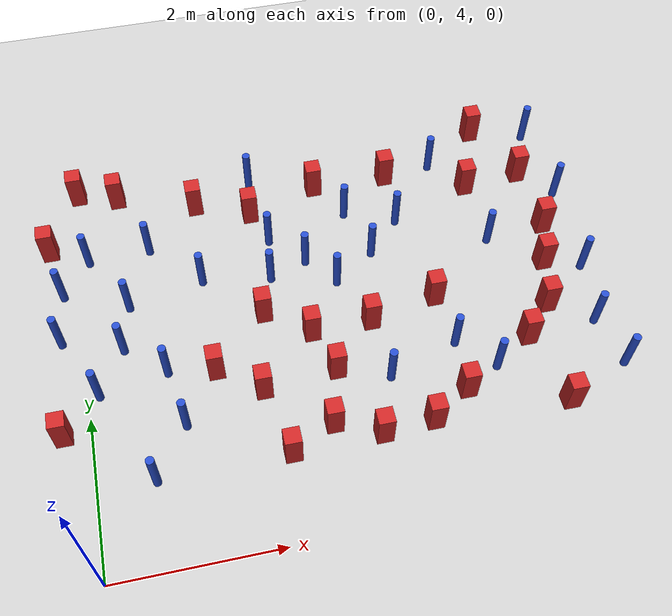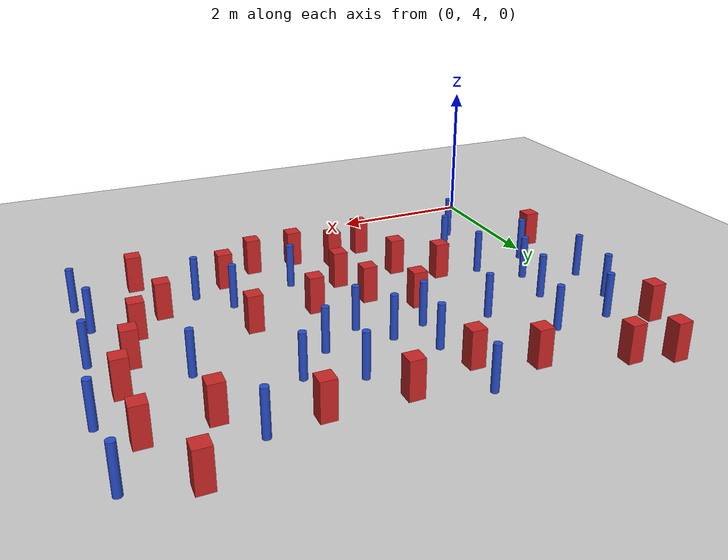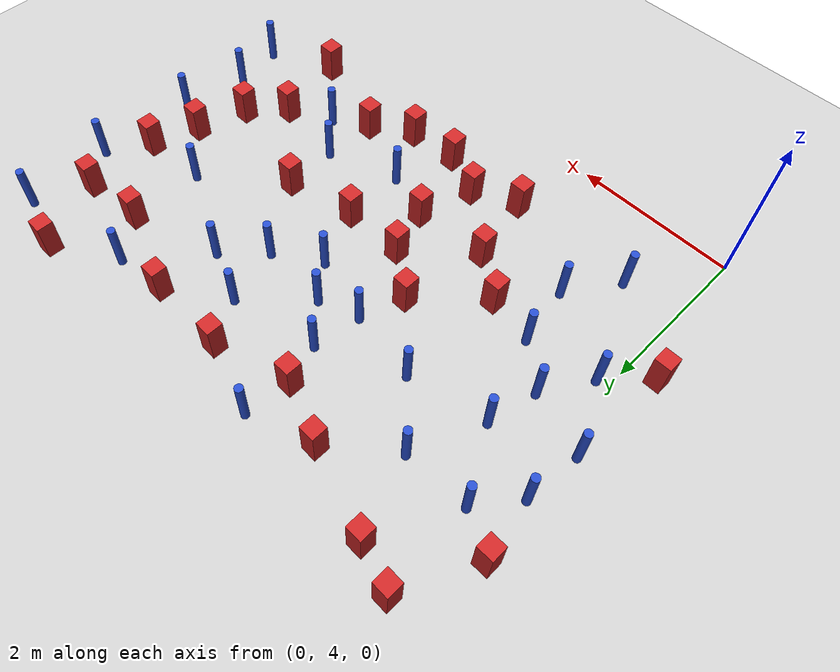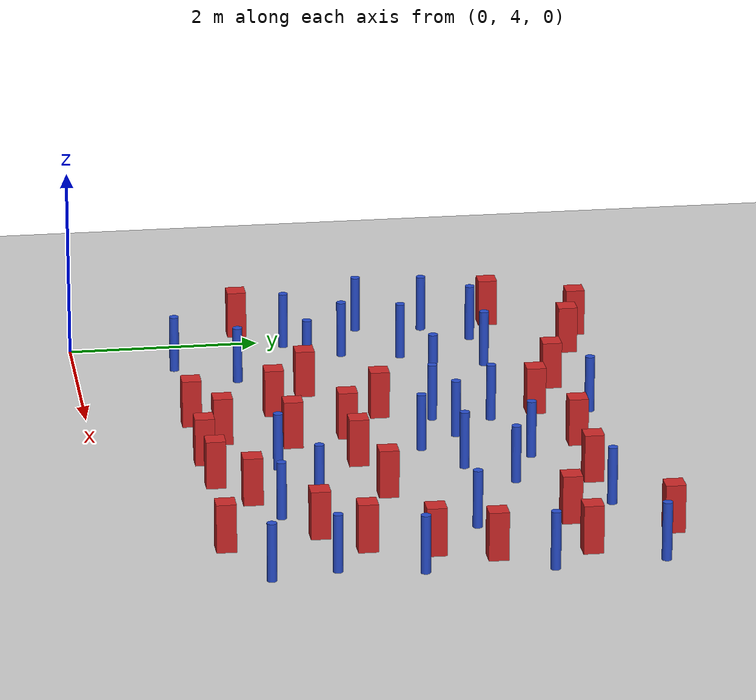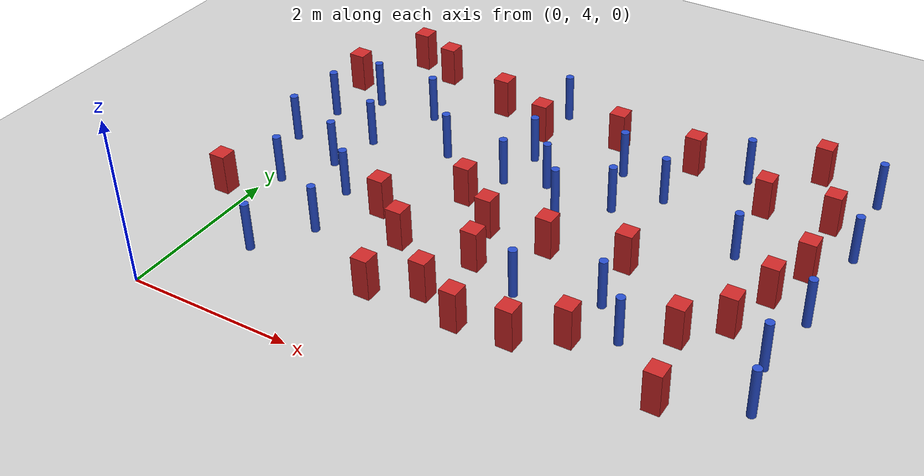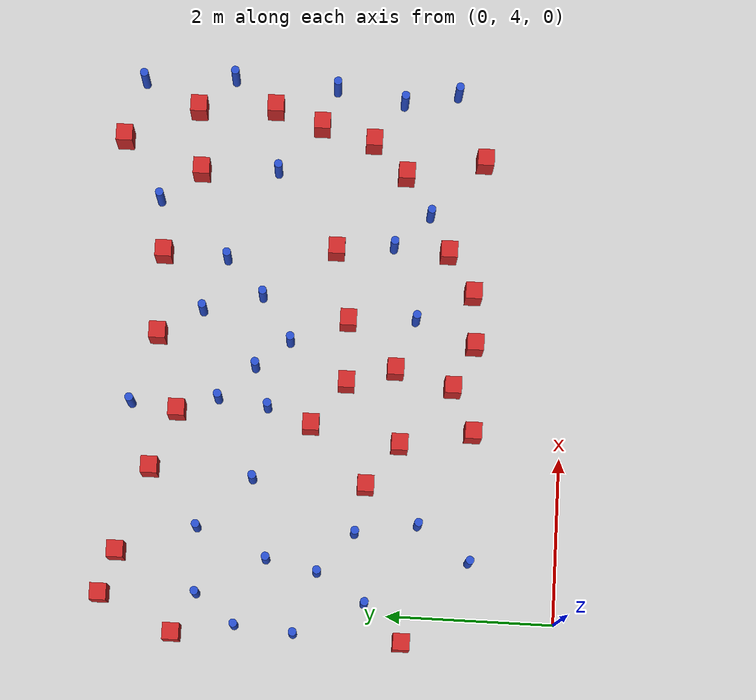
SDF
<sdf version="1.6">
 <world name="default">
  <model name="ground_plane">
   <static>1</static>
   <link name="link">
    <collision name="collision">
     <geometry><plane><normal>0 0 1</normal><size>100 100</size></plane></geometry>
     <surface><friction><ode><mu>100</mu><mu2>50</mu2></ode></friction></surface>
    </collision>
    <visual name="visual">
     <cast_shadows>0</cast_shadows>
     <geometry><plane><normal>0 0 1</normal><size>100 100</size></plane></geometry>
     <material>
      <ambient>1.0 1.0 1.0 1.0</ambient>
      <diffuse>0.8 0.8 0.8 1.0</diffuse>
      <specular>0.01 0.01 0.01 1.000000</specular>
     </material>
    </visual>
   </link>
  </model>
  <model name="square_post_obstacle3">
   <static>true</static>
   <pose>3.93820406455 5.13274334286 8.22691968438e-08 7.2212513382e-06 -7.54495500217e-07 2.29674213826e-05</pose>
   <link name="link">
    <pose>0 0 0.25 0 -0 0</pose>
    <inertial>
     <mass>100</mass>
     <inertia>
      <ixx>0.166667</ixx>
      <ixy>0</ixy>
      <ixz>0</ixz>
      <iyy>0.166667</iyy>
      <iyz>0</iyz>
      <izz>0.166667</izz>
     </inertia>
    </inertial>
    <collision name="collision"><geometry><box><size>.2 .2 .5</size></box></geometry></collision>
    <visual name="visual">
     <geometry><box><size>.2 .2 .5</size></box></geometry>
     <material>
      <script><name>Gazebo/Red</name><uri>file://media/materials/scripts/gazebo.material</uri></script>
     </material>
    </visual>
   </link>
  </model>
  <model name="square_post_obstacle6">
   <static>true</static>
   <pose>0.612230005593 9.25797296877 8.22691968438e-08 7.22125133819e-06 -7.54495500217e-07 2.29674213826e-05</pose>
   <link name="link">
    <pose>0 0 0.25 0 -0 0</pose>
    <inertial>
     <mass>100</mass>
     <inertia>
      <ixx>0.166667</ixx>
      <ixy>0</ixy>
      <ixz>0</ixz>
      <iyy>0.166667</iyy>
      <iyz>0</iyz>
      <izz>0.166667</izz>
     </inertia>
    </inertial>
    <collision name="collision"><geometry><box><size>.2 .2 .5</size></box></geometry></collision>
    <visual name="visual">
     <geometry><box><size>.2 .2 .5</size></box></geometry>
     <material>
      <script><name>Gazebo/Red</name><uri>file://media/materials/scripts/gazebo.material</uri></script>
     </material>
    </visual>
   </link>
  </model>
  <model name="square_post_obstacle8">
   <static>true</static>
   <pose>2.05817050153 5.94106591254 8.22691968438e-08 7.22125133819e-06 -7.54495500217e-07 2.29674213826e-05</pose>
   <link name="link">
    <pose>0 0 0.25 0 -0 0</pose>
    <inertial>
     <mass>100</mass>
     <inertia>
      <ixx>0.166667</ixx>
      <ixy>0</ixy>
      <ixz>0</ixz>
      <iyy>0.166667</iyy>
      <iyz>0</iyz>
      <izz>0.166667</izz>
     </inertia>
    </inertial>
    <collision name="collision"><geometry><box><size>.2 .2 .5</size></box></geometry></collision>
    <visual name="visual">
     <geometry><box><size>.2 .2 .5</size></box></geometry>
     <material>
      <script><name>Gazebo/Red</name><uri>file://media/materials/scripts/gazebo.material</uri></script>
     </material>
    </visual>
   </link>
  </model>
  <model name="square_post_obstacle12">
   <static>true</static>
   <pose>6.08532268999 8.58405498495 8.22691968438e-08 7.22125133819e-06 -7.54495500217e-07 2.29674213826e-05</pose>
   <link name="link">
    <pose>0 0 0.25 0 -0 0</pose>
    <inertial>
     <mass>100</mass>
     <inertia>
      <ixx>0.166667</ixx>
      <ixy>0</ixy>
      <ixz>0</ixz>
      <iyy>0.166667</iyy>
      <iyz>0</iyz>
      <izz>0.166667</izz>
     </inertia>
    </inertial>
    <collision name="collision"><geometry><box><size>.2 .2 .5</size></box></geometry></collision>
    <visual name="visual">
     <geometry><box><size>.2 .2 .5</size></box></geometry>
     <material>
      <script><name>Gazebo/Red</name><uri>file://media/materials/scripts/gazebo.material</uri></script>
     </material>
    </visual>
   </link>
  </model>
  <model name="square_post_obstacle13">
   <static>true</static>
   <pose>2.34242101366 8.63387449862 8.22691968438e-08 7.22125133819e-06 -7.54495500217e-07 2.29674213826e-05</pose>
   <link name="link">
    <pose>0 0 0.25 0 -0 0</pose>
    <inertial>
     <mass>100</mass>
     <inertia>
      <ixx>0.166667</ixx>
      <ixy>0</ixy>
      <ixz>0</ixz>
      <iyy>0.166667</iyy>
      <iyz>0</iyz>
      <izz>0.166667</izz>
     </inertia>
    </inertial>
    <collision name="collision"><geometry><box><size>.2 .2 .5</size></box></geometry></collision>
    <visual name="visual">
     <geometry><box><size>.2 .2 .5</size></box></geometry>
     <material>
      <script><name>Gazebo/Red</name><uri>file://media/materials/scripts/gazebo.material</uri></script>
     </material>
    </visual>
   </link>
  </model>
  <model name="square_post_obstacle17">
   <static>true</static>
   <pose>4.26680201008 8.90688729605 8.22691968438e-08 7.22125133819e-06 -7.54495500217e-07 2.29674213826e-05</pose>
   <link name="link">
    <pose>0 0 0.25 0 -0 0</pose>
    <inertial>
     <mass>100</mass>
     <inertia>
      <ixx>0.166667</ixx>
      <ixy>0</ixy>
      <ixz>0</ixz>
      <iyy>0.166667</iyy>
      <iyz>0</iyz>
      <izz>0.166667</izz>
     </inertia>
    </inertial>
    <collision name="collision"><geometry><box><size>.2 .2 .5</size></box></geometry></collision>
    <visual name="visual">
     <geometry><box><size>.2 .2 .5</size></box></geometry>
     <material>
      <script><name>Gazebo/Red</name><uri>file://media/materials/scripts/gazebo.material</uri></script>
     </material>
    </visual>
   </link>
  </model>
  <model name="pole_obstacle13">
   <static>true</static>
   <pose>4.47920381448 6.11489741807 2.88873142074e-08 -9.90536690842e-09 4.60219948965e-07 -1.20965994976e-07</pose>
   <link name="link">
    <pose>0 0 0.3 0 -0 0</pose>
    <inertial>
     <mass>1</mass>
     <inertia><ixx>0.145833</ixx><ixy>0</ixy><ixz>0</ixz><iyy>0.145833</iyy><iyz>0</iyz><izz>0.125</izz></inertia>
    </inertial>
    <collision name="collision">
     <geometry><cylinder><radius>0.05</radius><length>.6</length></cylinder></geometry>
    </collision>
    <visual name="visual">
     <geometry><cylinder><radius>0.05</radius><length>.6</length></cylinder></geometry>
     <material>
      <script><name>Gazebo/Blue</name><uri>file://media/materials/scripts/gazebo.material</uri></script>
     </material>
    </visual>
   </link>
  </model>
  <model name="pole_obstacle18">
   <static>true</static>
   <pose>1.56160406141 7.6801341566 2.88873142074e-08 -9.90536689852e-09 4.60219948989e-07 -1.2096599496e-07</pose>
   <link name="link">
    <pose>0 0 0.3 0 -0 0</pose>
    <inertial>
     <mass>1</mass>
     <inertia><ixx>0.145833</ixx><ixy>0</ixy><ixz>0</ixz><iyy>0.145833</iyy><iyz>0</iyz><izz>0.125</izz></inertia>
    </inertial>
    <collision name="collision">
     <geometry><cylinder><radius>0.05</radius><length>.6</length></cylinder></geometry>
    </collision>
    <visual name="visual">
     <geometry><cylinder><radius>0.05</radius><length>.6</length></cylinder></geometry>
     <material>
      <script><name>Gazebo/Blue</name><uri>file://media/materials/scripts/gazebo.material</uri></script>
     </material>
    </visual>
   </link>
  </model>
  <model name="square_post_obstacle34">
   <static>true</static>
   <pose>4.43094901096 5.45059155126 8.22691968438e-08 7.2212513382e-06 -7.54495500217e-07 2.29674213826e-05</pose>
   <link name="link">
    <pose>0 0 0.25 0 -0 0</pose>
    <inertial>
     <mass>100</mass>
     <inertia>
      <ixx>0.166667</ixx>
      <ixy>0</ixy>
      <ixz>0</ixz>
      <iyy>0.166667</iyy>
      <iyz>0</iyz>
      <izz>0.166667</izz>
     </inertia>
    </inertial>
    <collision name="collision"><geometry><box><size>.2 .2 .5</size></box></geometry></collision>
    <visual name="visual">
     <geometry><box><size>.2 .2 .5</size></box></geometry>
     <material>
      <script><name>Gazebo/Red</name><uri>file://media/materials/scripts/gazebo.material</uri></script>
     </material>
    </visual>
   </link>
  </model>
  <model name="pole_obstacle34">
   <static>true</static>
   <pose>0.474827647857 6.85268794192 2.88873142074e-08 -9.90536689616e-09 4.60219948994e-07 -1.20965994955e-07</pose>
   <link name="link">
    <pose>0 0 0.3 0 -0 0</pose>
    <inertial>
     <mass>1</mass>
     <inertia><ixx>0.145833</ixx><ixy>0</ixy><ixz>0</ixz><iyy>0.145833</iyy><iyz>0</iyz><izz>0.125</izz></inertia>
    </inertial>
    <collision name="collision">
     <geometry><cylinder><radius>0.05</radius><length>.6</length></cylinder></geometry>
    </collision>
    <visual name="visual">
     <geometry><cylinder><radius>0.05</radius><length>.6</length></cylinder></geometry>
     <material>
      <script><name>Gazebo/Blue</name><uri>file://media/materials/scripts/gazebo.material</uri></script>
     </material>
    </visual>
   </link>
  </model>
  <model name="square_post_obstacle37">
   <static>true</static>
   <pose>5.94651616325 7.06699142057 8.22691968438e-08 7.2212513382e-06 -7.54495500217e-07 2.29674213826e-05</pose>
   <link name="link">
    <pose>0 0 0.25 0 -0 0</pose>
    <inertial>
     <mass>100</mass>
     <inertia>
      <ixx>0.166667</ixx>
      <ixy>0</ixy>
      <ixz>0</ixz>
      <iyy>0.166667</iyy>
      <iyz>0</iyz>
      <izz>0.166667</izz>
     </inertia>
    </inertial>
    <collision name="collision"><geometry><box><size>.2 .2 .5</size></box></geometry></collision>
    <visual name="visual">
     <geometry><box><size>.2 .2 .5</size></box></geometry>
     <material>
      <script><name>Gazebo/Red</name><uri>file://media/materials/scripts/gazebo.material</uri></script>
     </material>
    </visual>
   </link>
  </model>
  <model name="pole_obstacle41">
   <static>true</static>
   <pose>0.679416397526 5.04934636724 2.88873142074e-08 -9.90536689661e-09 4.60219948993e-07 -1.20965994957e-07</pose>
   <link name="link">
    <pose>0 0 0.3 0 -0 0</pose>
    <inertial>
     <mass>1</mass>
     <inertia><ixx>0.145833</ixx><ixy>0</ixy><ixz>0</ixz><iyy>0.145833</iyy><iyz>0</iyz><izz>0.125</izz></inertia>
    </inertial>
    <collision name="collision">
     <geometry><cylinder><radius>0.05</radius><length>.6</length></cylinder></geometry>
    </collision>
    <visual name="visual">
     <geometry><cylinder><radius>0.05</radius><length>.6</length></cylinder></geometry>
     <material>
      <script><name>Gazebo/Blue</name><uri>file://media/materials/scripts/gazebo.material</uri></script>
     </material>
    </visual>
   </link>
  </model>
  <model name="pole_obstacle44">
   <static>true</static>
   <pose>3.58665545025 8.39336973576 2.88873142074e-08 -9.90536692318e-09 4.6021994893e-07 -1.20965994988e-07</pose>
   <link name="link">
    <pose>0 0 0.3 0 -0 0</pose>
    <inertial>
     <mass>1</mass>
     <inertia><ixx>0.145833</ixx><ixy>0</ixy><ixz>0</ixz><iyy>0.145833</iyy><iyz>0</iyz><izz>0.125</izz></inertia>
    </inertial>
    <collision name="collision">
     <geometry><cylinder><radius>0.05</radius><length>.6</length></cylinder></geometry>
    </collision>
    <visual name="visual">
     <geometry><cylinder><radius>0.05</radius><length>.6</length></cylinder></geometry>
     <material>
      <script><name>Gazebo/Blue</name><uri>file://media/materials/scripts/gazebo.material</uri></script>
     </material>
    </visual>
   </link>
  </model>
  <model name="square_post_obstacle47">
   <static>true</static>
   <pose>1.54200591391 6.32319415992 8.22691968438e-08 7.2212513382e-06 -7.54495500217e-07 2.29674213826e-05</pose>
   <link name="link">
    <pose>0 0 0.25 0 -0 0</pose>
    <inertial>
     <mass>100</mass>
     <inertia>
      <ixx>0.166667</ixx>
      <ixy>0</ixy>
      <ixz>0</ixz>
      <iyy>0.166667</iyy>
      <iyz>0</iyz>
      <izz>0.166667</izz>
     </inertia>
    </inertial>
    <collision name="collision"><geometry><box><size>.2 .2 .5</size></box></geometry></collision>
    <visual name="visual">
     <geometry><box><size>.2 .2 .5</size></box></geometry>
     <material>
      <script><name>Gazebo/Red</name><uri>file://media/materials/scripts/gazebo.material</uri></script>
     </material>
    </visual>
   </link>
  </model>
  <model name="pole_obstacle53">
   <static>true</static>
   <pose>0.946017847434 8.31650442014 2.88873142074e-08 -9.90536690779e-09 4.60219948967e-07 -1.20965994975e-07</pose>
   <link name="link">
    <pose>0 0 0.3 0 -0 0</pose>
    <inertial>
     <mass>1</mass>
     <inertia><ixx>0.145833</ixx><ixy>0</ixy><ixz>0</ixz><iyy>0.145833</iyy><iyz>0</iyz><izz>0.125</izz></inertia>
    </inertial>
    <collision name="collision">
     <geometry><cylinder><radius>0.05</radius><length>.6</length></cylinder></geometry>
    </collision>
    <visual name="visual">
     <geometry><cylinder><radius>0.05</radius><length>.6</length></cylinder></geometry>
     <material>
      <script><name>Gazebo/Blue</name><uri>file://media/materials/scripts/gazebo.material</uri></script>
     </material>
    </visual>
   </link>
  </model>
  <model name="pole_obstacle62">
   <static>true</static>
   <pose>3.58914562045 5.80839317502 2.88873142074e-08 -9.90536689859e-09 4.60219948989e-07 -1.20965994961e-07</pose>
   <link name="link">
    <pose>0 0 0.3 0 -0 0</pose>
    <inertial>
     <mass>1</mass>
     <inertia><ixx>0.145833</ixx><ixy>0</ixy><ixz>0</ixz><iyy>0.145833</iyy><iyz>0</iyz><izz>0.125</izz></inertia>
    </inertial>
    <collision name="collision">
     <geometry><cylinder><radius>0.05</radius><length>.6</length></cylinder></geometry>
    </collision>
    <visual name="visual">
     <geometry><cylinder><radius>0.05</radius><length>.6</length></cylinder></geometry>
     <material>
      <script><name>Gazebo/Blue</name><uri>file://media/materials/scripts/gazebo.material</uri></script>
     </material>
    </visual>
   </link>
  </model>
  <model name="pole_obstacle65">
   <static>true</static>
   <pose>5.35327098498 7.57204691317 2.88873142074e-08 -9.90536690842e-09 4.60219948965e-07 -1.20965994976e-07</pose>
   <link name="link">
    <pose>0 0 0.3 0 -0 0</pose>
    <inertial>
     <mass>1</mass>
     <inertia><ixx>0.145833</ixx><ixy>0</ixy><ixz>0</ixz><iyy>0.145833</iyy><iyz>0</iyz><izz>0.125</izz></inertia>
    </inertial>
    <collision name="collision">
     <geometry><cylinder><radius>0.05</radius><length>.6</length></cylinder></geometry>
    </collision>
    <visual name="visual">
     <geometry><cylinder><radius>0.05</radius><length>.6</length></cylinder></geometry>
     <material>
      <script><name>Gazebo/Blue</name><uri>file://media/materials/scripts/gazebo.material</uri></script>
     </material>
    </visual>
   </link>
  </model>
  <model name="square_post_obstacle75">
   <static>true</static>
   <pose>2.96642379418 6.03045998786 8.22691968438e-08 7.2212513382e-06 -7.54495500217e-07 2.29674213826e-05</pose>
   <link name="link">
    <pose>0 0 0.25 0 -0 0</pose>
    <inertial>
     <mass>100</mass>
     <inertia>
      <ixx>0.166667</ixx>
      <ixy>0</ixy>
      <ixz>0</ixz>
      <iyy>0.166667</iyy>
      <iyz>0</iyz>
      <izz>0.166667</izz>
     </inertia>
    </inertial>
    <collision name="collision"><geometry><box><size>.2 .2 .5</size></box></geometry></collision>
    <visual name="visual">
     <geometry><box><size>.2 .2 .5</size></box></geometry>
     <material>
      <script><name>Gazebo/Red</name><uri>file://media/materials/scripts/gazebo.material</uri></script>
     </material>
    </visual>
   </link>
  </model>
  <model name="pole_obstacle73">
   <static>true</static>
   <pose>-0.201702675605 7.80340257385 2.88873142074e-08 -9.90536689703e-09 4.60219948992e-07 -1.20965994959e-07</pose>
   <link name="link">
    <pose>0 0 0.3 0 -0 0</pose>
    <inertial>
     <mass>1</mass>
     <inertia><ixx>0.145833</ixx><ixy>0</ixy><ixz>0</ixz><iyy>0.145833</iyy><iyz>0</iyz><izz>0.125</izz></inertia>
    </inertial>
    <collision name="collision">
     <geometry><cylinder><radius>0.05</radius><length>.6</length></cylinder></geometry>
    </collision>
    <visual name="visual">
     <geometry><cylinder><radius>0.05</radius><length>.6</length></cylinder></geometry>
     <material>
      <script><name>Gazebo/Blue</name><uri>file://media/materials/scripts/gazebo.material</uri></script>
     </material>
    </visual>
   </link>
  </model>
  <model name="pole_obstacle77">
   <static>true</static>
   <pose>4.23570245893 8.13283826278 2.88873142074e-08 -9.9053668967e-09 4.60219948993e-07 -1.20965994957e-07</pose>
   <link name="link">
    <pose>0 0 0.3 0 -0 0</pose>
    <inertial>
     <mass>1</mass>
     <inertia><ixx>0.145833</ixx><ixy>0</ixy><ixz>0</ixz><iyy>0.145833</iyy><iyz>0</iyz><izz>0.125</izz></inertia>
    </inertial>
    <collision name="collision">
     <geometry><cylinder><radius>0.05</radius><length>.6</length></cylinder></geometry>
    </collision>
    <visual name="visual">
     <geometry><cylinder><radius>0.05</radius><length>.6</length></cylinder></geometry>
     <material>
      <script><name>Gazebo/Blue</name><uri>file://media/materials/scripts/gazebo.material</uri></script>
     </material>
    </visual>
   </link>
  </model>
  <model name="pole_obstacle82">
   <static>true</static>
   <pose>2.41526097038 9.19629302168 2.88873142074e-08 -9.90536692318e-09 4.6021994893e-07 -1.20965994988e-07</pose>
   <link name="link">
    <pose>0 0 0.3 0 -0 0</pose>
    <inertial>
     <mass>1</mass>
     <inertia><ixx>0.145833</ixx><ixy>0</ixy><ixz>0</ixz><iyy>0.145833</iyy><iyz>0</iyz><izz>0.125</izz></inertia>
    </inertial>
    <collision name="collision">
     <geometry><cylinder><radius>0.05</radius><length>.6</length></cylinder></geometry>
    </collision>
    <visual name="visual">
     <geometry><cylinder><radius>0.05</radius><length>.6</length></cylinder></geometry>
     <material>
      <script><name>Gazebo/Blue</name><uri>file://media/materials/scripts/gazebo.material</uri></script>
     </material>
    </visual>
   </link>
  </model>
  <model name="pole_obstacle84">
   <static>true</static>
   <pose>0.12998327745 6.27214296232 2.88873142074e-08 -9.90536689843e-09 4.60219948989e-07 -1.20965994962e-07</pose>
   <link name="link">
    <pose>0 0 0.3 0 -0 0</pose>
    <inertial>
     <mass>1</mass>
     <inertia><ixx>0.145833</ixx><ixy>0</ixy><ixz>0</ixz><iyy>0.145833</iyy><iyz>0</iyz><izz>0.125</izz></inertia>
    </inertial>
    <collision name="collision">
     <geometry><cylinder><radius>0.05</radius><length>.6</length></cylinder></geometry>
    </collision>
    <visual name="visual">
     <geometry><cylinder><radius>0.05</radius><length>.6</length></cylinder></geometry>
     <material>
      <script><name>Gazebo/Blue</name><uri>file://media/materials/scripts/gazebo.material</uri></script>
     </material>
    </visual>
   </link>
  </model>
  <model name="pole_obstacle85">
   <static>true</static>
   <pose>4.88706481483 5.68874138658 2.88873142074e-08 -9.90536690842e-09 4.60219948965e-07 -1.20965994976e-07</pose>
   <link name="link">
    <pose>0 0 0.3 0 -0 0</pose>
    <inertial>
     <mass>1</mass>
     <inertia><ixx>0.145833</ixx><ixy>0</ixy><ixz>0</ixz><iyy>0.145833</iyy><iyz>0</iyz><izz>0.125</izz></inertia>
    </inertial>
    <collision name="collision">
     <geometry><cylinder><radius>0.05</radius><length>.6</length></cylinder></geometry>
    </collision>
    <visual name="visual">
     <geometry><cylinder><radius>0.05</radius><length>.6</length></cylinder></geometry>
     <material>
      <script><name>Gazebo/Blue</name><uri>file://media/materials/scripts/gazebo.material</uri></script>
     </material>
    </visual>
   </link>
  </model>
  <model name="pole_obstacle93">
   <static>true</static>
   <pose>2.92072481215 7.7202049657 2.88873142074e-08 -9.90536689859e-09 4.60219948989e-07 -1.20965994961e-07</pose>
   <link name="link">
    <pose>0 0 0.3 0 -0 0</pose>
    <inertial>
     <mass>1</mass>
     <inertia><ixx>0.145833</ixx><ixy>0</ixy><ixz>0</ixz><iyy>0.145833</iyy><iyz>0</iyz><izz>0.125</izz></inertia>
    </inertial>
    <collision name="collision">
     <geometry><cylinder><radius>0.05</radius><length>.6</length></cylinder></geometry>
    </collision>
    <visual name="visual">
     <geometry><cylinder><radius>0.05</radius><length>.6</length></cylinder></geometry>
     <material>
      <script><name>Gazebo/Blue</name><uri>file://media/materials/scripts/gazebo.material</uri></script>
     </material>
    </visual>
   </link>
  </model>
  <model name="square_post_obstacle88">
   <static>true</static>
   <pose>5.3108195832 8.50744100499 8.22691968438e-08 7.22125133819e-06 -7.54495500217e-07 2.29674213826e-05</pose>
   <link name="link">
    <pose>0 0 0.25 0 -0 0</pose>
    <inertial>
     <mass>100</mass>
     <inertia>
      <ixx>0.166667</ixx>
      <ixy>0</ixy>
      <ixz>0</ixz>
      <iyy>0.166667</iyy>
      <iyz>0</iyz>
      <izz>0.166667</izz>
     </inertia>
    </inertial>
    <collision name="collision"><geometry><box><size>.2 .2 .5</size></box></geometry></collision>
    <visual name="visual">
     <geometry><box><size>.2 .2 .5</size></box></geometry>
     <material>
      <script><name>Gazebo/Red</name><uri>file://media/materials/scripts/gazebo.material</uri></script>
     </material>
    </visual>
   </link>
  </model>
  <model name="square_post_obstacle90">
   <static>true</static>
   <pose>2.24498022631 7.01553604363 8.22691968438e-08 7.2212513382e-06 -7.54495500217e-07 2.29674213826e-05</pose>
   <link name="link">
    <pose>0 0 0.25 0 -0 0</pose>
    <inertial>
     <mass>100</mass>
     <inertia>
      <ixx>0.166667</ixx>
      <ixy>0</ixy>
      <ixz>0</ixz>
      <iyy>0.166667</iyy>
      <iyz>0</iyz>
      <izz>0.166667</izz>
     </inertia>
    </inertial>
    <collision name="collision"><geometry><box><size>.2 .2 .5</size></box></geometry></collision>
    <visual name="visual">
     <geometry><box><size>.2 .2 .5</size></box></geometry>
     <material>
      <script><name>Gazebo/Red</name><uri>file://media/materials/scripts/gazebo.material</uri></script>
     </material>
    </visual>
   </link>
  </model>
  <model name="square_post_obstacle98">
   <static>true</static>
   <pose>3.26627901642 8.91919643236 8.22691968438e-08 7.22125133819e-06 -7.54495500217e-07 2.29674213826e-05</pose>
   <link name="link">
    <pose>0 0 0.25 0 -0 0</pose>
    <inertial>
     <mass>100</mass>
     <inertia>
      <ixx>0.166667</ixx>
      <ixy>0</ixy>
      <ixz>0</ixz>
      <iyy>0.166667</iyy>
      <iyz>0</iyz>
      <izz>0.166667</izz>
     </inertia>
    </inertial>
    <collision name="collision"><geometry><box><size>.2 .2 .5</size></box></geometry></collision>
    <visual name="visual">
     <geometry><box><size>.2 .2 .5</size></box></geometry>
     <material>
      <script><name>Gazebo/Red</name><uri>file://media/materials/scripts/gazebo.material</uri></script>
     </material>
    </visual>
   </link>
  </model>
  <model name="square_post_obstacle99">
   <static>true</static>
   <pose>4.40627896974 6.81317308592 8.22691968438e-08 7.2212513382e-06 -7.54495500217e-07 2.29674213826e-05</pose>
   <link name="link">
    <pose>0 0 0.25 0 -0 0</pose>
    <inertial>
     <mass>100</mass>
     <inertia>
      <ixx>0.166667</ixx>
      <ixy>0</ixy>
      <ixz>0</ixz>
      <iyy>0.166667</iyy>
      <iyz>0</iyz>
      <izz>0.166667</izz>
     </inertia>
    </inertial>
    <collision name="collision"><geometry><box><size>.2 .2 .5</size></box></geometry></collision>
    <visual name="visual">
     <geometry><box><size>.2 .2 .5</size></box></geometry>
     <material>
      <script><name>Gazebo/Red</name><uri>file://media/materials/scripts/gazebo.material</uri></script>
     </material>
    </visual>
   </link>
  </model>
  <model name="square_post_obstacle102">
   <static>true</static>
   <pose>0.0962225046785 9.42552839052 8.22691968438e-08 7.22125133819e-06 -7.54495500217e-07 2.29674213826e-05</pose>
   <link name="link">
    <pose>0 0 0.25 0 -0 0</pose>
    <inertial>
     <mass>100</mass>
     <inertia>
      <ixx>0.166667</ixx>
      <ixy>0</ixy>
      <ixz>0</ixz>
      <iyy>0.166667</iyy>
      <iyz>0</iyz>
      <izz>0.166667</izz>
     </inertia>
    </inertial>
    <collision name="collision"><geometry><box><size>.2 .2 .5</size></box></geometry></collision>
    <visual name="visual">
     <geometry><box><size>.2 .2 .5</size></box></geometry>
     <material>
      <script><name>Gazebo/Red</name><uri>file://media/materials/scripts/gazebo.material</uri></script>
     </material>
    </visual>
   </link>
  </model>
  <model name="pole_obstacle117">
   <static>true</static>
   <pose>1.09561451478 5.6759234283 2.88873142074e-08 -9.90536689852e-09 4.60219948989e-07 -1.2096599496e-07</pose>
   <link name="link">
    <pose>0 0 0.3 0 -0 0</pose>
    <inertial>
     <mass>1</mass>
     <inertia><ixx>0.145833</ixx><ixy>0</ixy><ixz>0</ixz><iyy>0.145833</iyy><iyz>0</iyz><izz>0.125</izz></inertia>
    </inertial>
    <collision name="collision">
     <geometry><cylinder><radius>0.05</radius><length>.6</length></cylinder></geometry>
    </collision>
    <visual name="visual">
     <geometry><cylinder><radius>0.05</radius><length>.6</length></cylinder></geometry>
     <material>
      <script><name>Gazebo/Blue</name><uri>file://media/materials/scripts/gazebo.material</uri></script>
     </material>
    </visual>
   </link>
  </model>
  <model name="square_post_obstacle105">
   <static>true</static>
   <pose>5.5874650344 5.0557961497 8.22691968438e-08 7.2212513382e-06 -7.54495500217e-07 2.29674213826e-05</pose>
   <link name="link">
    <pose>0 0 0.25 0 -0 0</pose>
    <inertial>
     <mass>100</mass>
     <inertia>
      <ixx>0.166667</ixx>
      <ixy>0</ixy>
      <ixz>0</ixz>
      <iyy>0.166667</iyy>
      <iyz>0</iyz>
      <izz>0.166667</izz>
     </inertia>
    </inertial>
    <collision name="collision"><geometry><box><size>.2 .2 .5</size></box></geometry></collision>
    <visual name="visual">
     <geometry><box><size>.2 .2 .5</size></box></geometry>
     <material>
      <script><name>Gazebo/Red</name><uri>file://media/materials/scripts/gazebo.material</uri></script>
     </material>
    </visual>
   </link>
  </model>
  <model name="pole_obstacle121">
   <static>true</static>
   <pose>2.51354448504 8.14652646422 2.88873142074e-08 -9.90536692318e-09 4.6021994893e-07 -1.20965994988e-07</pose>
   <link name="link">
    <pose>0 0 0.3 0 -0 0</pose>
    <inertial>
     <mass>1</mass>
     <inertia><ixx>0.145833</ixx><ixy>0</ixy><ixz>0</ixz><iyy>0.145833</iyy><iyz>0</iyz><izz>0.125</izz></inertia>
    </inertial>
    <collision name="collision">
     <geometry><cylinder><radius>0.05</radius><length>.6</length></cylinder></geometry>
    </collision>
    <visual name="visual">
     <geometry><cylinder><radius>0.05</radius><length>.6</length></cylinder></geometry>
     <material>
      <script><name>Gazebo/Blue</name><uri>file://media/materials/scripts/gazebo.material</uri></script>
     </material>
    </visual>
   </link>
  </model>
  <model name="pole_obstacle134">
   <static>true</static>
   <pose>3.79258393879 7.67717838141 2.88873142074e-08 -9.90536689859e-09 4.60219948989e-07 -1.20965994961e-07</pose>
   <link name="link">
    <pose>0 0 0.3 0 -0 0</pose>
    <inertial>
     <mass>1</mass>
     <inertia><ixx>0.145833</ixx><ixy>0</ixy><ixz>0</ixz><iyy>0.145833</iyy><iyz>0</iyz><izz>0.125</izz></inertia>
    </inertial>
    <collision name="collision">
     <geometry><cylinder><radius>0.05</radius><length>.6</length></cylinder></geometry>
    </collision>
    <visual name="visual">
     <geometry><cylinder><radius>0.05</radius><length>.6</length></cylinder></geometry>
     <material>
      <script><name>Gazebo/Blue</name><uri>file://media/materials/scripts/gazebo.material</uri></script>
     </material>
    </visual>
   </link>
  </model>
  <model name="pole_obstacle135">
   <static>true</static>
   <pose>4.92945384714 8.98887651886 2.88873142074e-08 -9.9053668967e-09 4.60219948993e-07 -1.20965994957e-07</pose>
   <link name="link">
    <pose>0 0 0.3 0 -0 0</pose>
    <inertial>
     <mass>1</mass>
     <inertia><ixx>0.145833</ixx><ixy>0</ixy><ixz>0</ixz><iyy>0.145833</iyy><iyz>0</iyz><izz>0.125</izz></inertia>
    </inertial>
    <collision name="collision">
     <geometry><cylinder><radius>0.05</radius><length>.6</length></cylinder></geometry>
    </collision>
    <visual name="visual">
     <geometry><cylinder><radius>0.05</radius><length>.6</length></cylinder></geometry>
     <material>
      <script><name>Gazebo/Blue</name><uri>file://media/materials/scripts/gazebo.material</uri></script>
     </material>
    </visual>
   </link>
  </model>
  <model name="square_post_obstacle121">
   <static>true</static>
   <pose>2.78077264562 6.6145463062 8.22691968438e-08 7.2212513382e-06 -7.54495500217e-07 2.29674213826e-05</pose>
   <link name="link">
    <pose>0 0 0.25 0 -0 0</pose>
    <inertial>
     <mass>100</mass>
     <inertia>
      <ixx>0.166667</ixx>
      <ixy>0</ixy>
      <ixz>0</ixz>
      <iyy>0.166667</iyy>
      <iyz>0</iyz>
      <izz>0.166667</izz>
     </inertia>
    </inertial>
    <collision name="collision"><geometry><box><size>.2 .2 .5</size></box></geometry></collision>
    <visual name="visual">
     <geometry><box><size>.2 .2 .5</size></box></geometry>
     <material>
      <script><name>Gazebo/Red</name><uri>file://media/materials/scripts/gazebo.material</uri></script>
     </material>
    </visual>
   </link>
  </model>
  <model name="square_post_obstacle126">
   <static>true</static>
   <pose>5.76714079916 6.421681289 8.22691968438e-08 7.2212513382e-06 -7.54495500217e-07 2.29674213826e-05</pose>
   <link name="link">
    <pose>0 0 0.25 0 -0 0</pose>
    <inertial>
     <mass>100</mass>
     <inertia>
      <ixx>0.166667</ixx>
      <ixy>0</ixy>
      <ixz>0</ixz>
      <iyy>0.166667</iyy>
      <iyz>0</iyz>
      <izz>0.166667</izz>
     </inertia>
    </inertial>
    <collision name="collision"><geometry><box><size>.2 .2 .5</size></box></geometry></collision>
    <visual name="visual">
     <geometry><box><size>.2 .2 .5</size></box></geometry>
     <material>
      <script><name>Gazebo/Red</name><uri>file://media/materials/scripts/gazebo.material</uri></script>
     </material>
    </visual>
   </link>
  </model>
  <model name="pole_obstacle154">
   <static>true</static>
   <pose>3.25290006375 7.31530293738 2.88873142074e-08 -9.90536689859e-09 4.60219948989e-07 -1.20965994961e-07</pose>
   <link name="link">
    <pose>0 0 0.3 0 -0 0</pose>
    <inertial>
     <mass>1</mass>
     <inertia><ixx>0.145833</ixx><ixy>0</ixy><ixz>0</ixz><iyy>0.145833</iyy><iyz>0</iyz><izz>0.125</izz></inertia>
    </inertial>
    <collision name="collision">
     <geometry><cylinder><radius>0.05</radius><length>.6</length></cylinder></geometry>
    </collision>
    <visual name="visual">
     <geometry><cylinder><radius>0.05</radius><length>.6</length></cylinder></geometry>
     <material>
      <script><name>Gazebo/Blue</name><uri>file://media/materials/scripts/gazebo.material</uri></script>
     </material>
    </visual>
   </link>
  </model>
  <model name="square_post_obstacle144">
   <static>true</static>
   <pose>2.77902233614 5.3312116097 8.22691968438e-08 7.2212513382e-06 -7.54495500217e-07 2.29674213826e-05</pose>
   <link name="link">
    <pose>0 0 0.25 0 -0 0</pose>
    <inertial>
     <mass>100</mass>
     <inertia>
      <ixx>0.166667</ixx>
      <ixy>0</ixy>
      <ixz>0</ixz>
      <iyy>0.166667</iyy>
      <iyz>0</iyz>
      <izz>0.166667</izz>
     </inertia>
    </inertial>
    <collision name="collision"><geometry><box><size>.2 .2 .5</size></box></geometry></collision>
    <visual name="visual">
     <geometry><box><size>.2 .2 .5</size></box></geometry>
     <material>
      <script><name>Gazebo/Red</name><uri>file://media/materials/scripts/gazebo.material</uri></script>
     </material>
    </visual>
   </link>
  </model>
  <model name="square_post_obstacle146">
   <static>true</static>
   <pose>-0.32602604079 8.53955585447 8.22691968438e-08 7.22125133819e-06 -7.54495500217e-07 2.29674213826e-05</pose>
   <link name="link">
    <pose>0 0 0.25 0 -0 0</pose>
    <inertial>
     <mass>100</mass>
     <inertia>
      <ixx>0.166667</ixx>
      <ixy>0</ixy>
      <ixz>0</ixz>
      <iyy>0.166667</iyy>
      <iyz>0</iyz>
      <izz>0.166667</izz>
     </inertia>
    </inertial>
    <collision name="collision"><geometry><box><size>.2 .2 .5</size></box></geometry></collision>
    <visual name="visual">
     <geometry><box><size>.2 .2 .5</size></box></geometry>
     <material>
      <script><name>Gazebo/Red</name><uri>file://media/materials/scripts/gazebo.material</uri></script>
     </material>
    </visual>
   </link>
  </model>
  <model name="square_post_obstacle150">
   <static>true</static>
   <pose>2.24029198059 5.06663031044 8.22691968438e-08 7.2212513382e-06 -7.54495500217e-07 2.29674213826e-05</pose>
   <link name="link">
    <pose>0 0 0.25 0 -0 0</pose>
    <inertial>
     <mass>100</mass>
     <inertia>
      <ixx>0.166667</ixx>
      <ixy>0</ixy>
      <ixz>0</ixz>
      <iyy>0.166667</iyy>
      <iyz>0</iyz>
      <izz>0.166667</izz>
     </inertia>
    </inertial>
    <collision name="collision"><geometry><box><size>.2 .2 .5</size></box></geometry></collision>
    <visual name="visual">
     <geometry><box><size>.2 .2 .5</size></box></geometry>
     <material>
      <script><name>Gazebo/Red</name><uri>file://media/materials/scripts/gazebo.material</uri></script>
     </material>
    </visual>
   </link>
  </model>
  <model name="pole_obstacle157">
   <static>true</static>
   <pose>0.156192925679 8.28251372432 2.88873142074e-08 -9.90536690979e-09 4.60219948962e-07 -1.20965994979e-07</pose>
   <link name="link">
    <pose>0 0 0.3 0 -0 0</pose>
    <inertial>
     <mass>1</mass>
     <inertia><ixx>0.145833</ixx><ixy>0</ixy><ixz>0</ixz><iyy>0.145833</iyy><iyz>0</iyz><izz>0.125</izz></inertia>
    </inertial>
    <collision name="collision">
     <geometry><cylinder><radius>0.05</radius><length>.6</length></cylinder></geometry>
    </collision>
    <visual name="visual">
     <geometry><cylinder><radius>0.05</radius><length>.6</length></cylinder></geometry>
     <material>
      <script><name>Gazebo/Blue</name><uri>file://media/materials/scripts/gazebo.material</uri></script>
     </material>
    </visual>
   </link>
  </model>
  <model name="pole_obstacle158">
   <static>true</static>
   <pose>-0.268084996697 7.10060990139 2.88873142074e-08 -9.90536689618e-09 4.60219948994e-07 -1.20965994956e-07</pose>
   <link name="link">
    <pose>0 0 0.3 0 -0 0</pose>
    <inertial>
     <mass>1</mass>
     <inertia><ixx>0.145833</ixx><ixy>0</ixy><ixz>0</ixz><iyy>0.145833</iyy><iyz>0</iyz><izz>0.125</izz></inertia>
    </inertial>
    <collision name="collision">
     <geometry><cylinder><radius>0.05</radius><length>.6</length></cylinder></geometry>
    </collision>
    <visual name="visual">
     <geometry><cylinder><radius>0.05</radius><length>.6</length></cylinder></geometry>
     <material>
      <script><name>Gazebo/Blue</name><uri>file://media/materials/scripts/gazebo.material</uri></script>
     </material>
    </visual>
   </link>
  </model>
  <model name="pole_obstacle161">
   <static>true</static>
   <pose>6.49032408672 8.15863187355 2.88873142074e-08 -9.9053668967e-09 4.60219948993e-07 -1.20965994957e-07</pose>
   <link name="link">
    <pose>0 0 0.3 0 -0 0</pose>
    <inertial>
     <mass>1</mass>
     <inertia><ixx>0.145833</ixx><ixy>0</ixy><ixz>0</ixz><iyy>0.145833</iyy><iyz>0</iyz><izz>0.125</izz></inertia>
    </inertial>
    <collision name="collision">
     <geometry><cylinder><radius>0.05</radius><length>.6</length></cylinder></geometry>
    </collision>
    <visual name="visual">
     <geometry><cylinder><radius>0.05</radius><length>.6</length></cylinder></geometry>
     <material>
      <script><name>Gazebo/Blue</name><uri>file://media/materials/scripts/gazebo.material</uri></script>
     </material>
    </visual>
   </link>
  </model>
  <model name="pole_obstacle169">
   <static>true</static>
   <pose>6.41929360228 6.90178548854 2.88873142074e-08 -9.90536690842e-09 4.60219948965e-07 -1.20965994976e-07</pose>
   <link name="link">
    <pose>0 0 0.3 0 -0 0</pose>
    <inertial>
     <mass>1</mass>
     <inertia><ixx>0.145833</ixx><ixy>0</ixy><ixz>0</ixz><iyy>0.145833</iyy><iyz>0</iyz><izz>0.125</izz></inertia>
    </inertial>
    <collision name="collision">
     <geometry><cylinder><radius>0.05</radius><length>.6</length></cylinder></geometry>
    </collision>
    <visual name="visual">
     <geometry><cylinder><radius>0.05</radius><length>.6</length></cylinder></geometry>
     <material>
      <script><name>Gazebo/Blue</name><uri>file://media/materials/scripts/gazebo.material</uri></script>
     </material>
    </visual>
   </link>
  </model>
  <model name="square_post_obstacle161">
   <static>true</static>
   <pose>1.63521323634 8.91782203912 8.22691968438e-08 7.22125133819e-06 -7.54495500217e-07 2.29674213826e-05</pose>
   <link name="link">
    <pose>0 0 0.25 0 -0 0</pose>
    <inertial>
     <mass>100</mass>
     <inertia>
      <ixx>0.166667</ixx>
      <ixy>0</ixy>
      <ixz>0</ixz>
      <iyy>0.166667</iyy>
      <iyz>0</iyz>
      <izz>0.166667</izz>
     </inertia>
    </inertial>
    <collision name="collision"><geometry><box><size>.2 .2 .5</size></box></geometry></collision>
    <visual name="visual">
     <geometry><box><size>.2 .2 .5</size></box></geometry>
     <material>
      <script><name>Gazebo/Red</name><uri>file://media/materials/scripts/gazebo.material</uri></script>
     </material>
    </visual>
   </link>
  </model>
  <model name="pole_obstacle171">
   <static>true</static>
   <pose>2.43326584231 7.54615149116 2.88873142074e-08 -9.90536689859e-09 4.60219948989e-07 -1.20965994961e-07</pose>
   <link name="link">
    <pose>0 0 0.3 0 -0 0</pose>
    <inertial>
     <mass>1</mass>
     <inertia><ixx>0.145833</ixx><ixy>0</ixy><ixz>0</ixz><iyy>0.145833</iyy><iyz>0</iyz><izz>0.125</izz></inertia>
    </inertial>
    <collision name="collision">
     <geometry><cylinder><radius>0.05</radius><length>.6</length></cylinder></geometry>
    </collision>
    <visual name="visual">
     <geometry><cylinder><radius>0.05</radius><length>.6</length></cylinder></geometry>
     <material>
      <script><name>Gazebo/Blue</name><uri>file://media/materials/scripts/gazebo.material</uri></script>
     </material>
    </visual>
   </link>
  </model>
  <model name="pole_obstacle173">
   <static>true</static>
   <pose>6.28289344048 6.06923584768 2.88873142074e-08 -9.90536690842e-09 4.60219948965e-07 -1.20965994976e-07</pose>
   <link name="link">
    <pose>0 0 0.3 0 -0 0</pose>
    <inertial>
     <mass>1</mass>
     <inertia><ixx>0.145833</ixx><ixy>0</ixy><ixz>0</ixz><iyy>0.145833</iyy><iyz>0</iyz><izz>0.125</izz></inertia>
    </inertial>
    <collision name="collision">
     <geometry><cylinder><radius>0.05</radius><length>.6</length></cylinder></geometry>
    </collision>
    <visual name="visual">
     <geometry><cylinder><radius>0.05</radius><length>.6</length></cylinder></geometry>
     <material>
      <script><name>Gazebo/Blue</name><uri>file://media/materials/scripts/gazebo.material</uri></script>
     </material>
    </visual>
   </link>
  </model>
  <model name="pole_obstacle178">
   <static>true</static>
   <pose>0.603588772673 7.468201193 2.88873142074e-08 -9.90536689661e-09 4.60219948993e-07 -1.20965994957e-07</pose>
   <link name="link">
    <pose>0 0 0.3 0 -0 0</pose>
    <inertial>
     <mass>1</mass>
     <inertia><ixx>0.145833</ixx><ixy>0</ixy><ixz>0</ixz><iyy>0.145833</iyy><iyz>0</iyz><izz>0.125</izz></inertia>
    </inertial>
    <collision name="collision">
     <geometry><cylinder><radius>0.05</radius><length>.6</length></cylinder></geometry>
    </collision>
    <visual name="visual">
     <geometry><cylinder><radius>0.05</radius><length>.6</length></cylinder></geometry>
     <material>
      <script><name>Gazebo/Blue</name><uri>file://media/materials/scripts/gazebo.material</uri></script>
     </material>
    </visual>
   </link>
  </model>
  <model name="pole_obstacle184">
   <static>true</static>
   <pose>0.96404284142 6.42647598747 2.88873142074e-08 -9.90536689421e-09 4.60219948999e-07 -1.20965994953e-07</pose>
   <link name="link">
    <pose>0 0 0.3 0 -0 0</pose>
    <inertial>
     <mass>1</mass>
     <inertia><ixx>0.145833</ixx><ixy>0</ixy><ixz>0</ixz><iyy>0.145833</iyy><iyz>0</iyz><izz>0.125</izz></inertia>
    </inertial>
    <collision name="collision">
     <geometry><cylinder><radius>0.05</radius><length>.6</length></cylinder></geometry>
    </collision>
    <visual name="visual">
     <geometry><cylinder><radius>0.05</radius><length>.6</length></cylinder></geometry>
     <material>
      <script><name>Gazebo/Blue</name><uri>file://media/materials/scripts/gazebo.material</uri></script>
     </material>
    </visual>
   </link>
  </model>
  <model name="square_post_obstacle196">
   <static>true</static>
   <pose>3.53711757732 6.62840014404 8.22691968438e-08 7.2212513382e-06 -7.54495500217e-07 2.29674213826e-05</pose>
   <link name="link">
    <pose>0 0 0.25 0 -0 0</pose>
    <inertial>
     <mass>100</mass>
     <inertia>
      <ixx>0.166667</ixx>
      <ixy>0</ixy>
      <ixz>0</ixz>
      <iyy>0.166667</iyy>
      <iyz>0</iyz>
      <izz>0.166667</izz>
     </inertia>
    </inertial>
    <collision name="collision"><geometry><box><size>.2 .2 .5</size></box></geometry></collision>
    <visual name="visual">
     <geometry><box><size>.2 .2 .5</size></box></geometry>
     <material>
      <script><name>Gazebo/Red</name><uri>file://media/materials/scripts/gazebo.material</uri></script>
     </material>
    </visual>
   </link>
  </model>
  <model name="square_post_obstacle204">
   <static>true</static>
   <pose>5.67464596013 9.46660652225 8.22691968438e-08 7.22125133819e-06 -7.54495500217e-07 2.29674213826e-05</pose>
   <link name="link">
    <pose>0 0 0.25 0 -0 0</pose>
    <inertial>
     <mass>100</mass>
     <inertia>
      <ixx>0.166667</ixx>
      <ixy>0</ixy>
      <ixz>0</ixz>
      <iyy>0.166667</iyy>
      <iyz>0</iyz>
      <izz>0.166667</izz>
     </inertia>
    </inertial>
    <collision name="collision"><geometry><box><size>.2 .2 .5</size></box></geometry></collision>
    <visual name="visual">
     <geometry><box><size>.2 .2 .5</size></box></geometry>
     <material>
      <script><name>Gazebo/Red</name><uri>file://media/materials/scripts/gazebo.material</uri></script>
     </material>
    </visual>
   </link>
  </model>
  <model name="square_post_obstacle207">
   <static>true</static>
   <pose>5.37864940187 6.00630688511 8.22691968438e-08 7.2212513382e-06 -7.54495500217e-07 2.29674213826e-05</pose>
   <link name="link">
    <pose>0 0 0.25 0 -0 0</pose>
    <inertial>
     <mass>100</mass>
     <inertia>
      <ixx>0.166667</ixx>
      <ixy>0</ixy>
      <ixz>0</ixz>
      <iyy>0.166667</iyy>
      <iyz>0</iyz>
      <izz>0.166667</izz>
     </inertia>
    </inertial>
    <collision name="collision"><geometry><box><size>.2 .2 .5</size></box></geometry></collision>
    <visual name="visual">
     <geometry><box><size>.2 .2 .5</size></box></geometry>
     <material>
      <script><name>Gazebo/Red</name><uri>file://media/materials/scripts/gazebo.material</uri></script>
     </material>
    </visual>
   </link>
  </model>
  <model name="pole_obstacle212">
   <static>true</static>
   <pose>6.40525282986 9.26245688899 2.88873142074e-08 -9.9053668967e-09 4.60219948993e-07 -1.20965994957e-07</pose>
   <link name="link">
    <pose>0 0 0.3 0 -0 0</pose>
    <inertial>
     <mass>1</mass>
     <inertia><ixx>0.145833</ixx><ixy>0</ixy><ixz>0</ixz><iyy>0.145833</iyy><iyz>0</iyz><izz>0.125</izz></inertia>
    </inertial>
    <collision name="collision">
     <geometry><cylinder><radius>0.05</radius><length>.6</length></cylinder></geometry>
    </collision>
    <visual name="visual">
     <geometry><cylinder><radius>0.05</radius><length>.6</length></cylinder></geometry>
     <material>
      <script><name>Gazebo/Blue</name><uri>file://media/materials/scripts/gazebo.material</uri></script>
     </material>
    </visual>
   </link>
  </model>
  <model name="square_post_obstacle215">
   <static>true</static>
   <pose>6.13377003262 7.64618996466 8.22691968438e-08 7.22125133819e-06 -7.54495500217e-07 2.29674213826e-05</pose>
   <link name="link">
    <pose>0 0 0.25 0 -0 0</pose>
    <inertial>
     <mass>100</mass>
     <inertia>
      <ixx>0.166667</ixx>
      <ixy>0</ixy>
      <ixz>0</ixz>
      <iyy>0.166667</iyy>
      <iyz>0</iyz>
      <izz>0.166667</izz>
     </inertia>
    </inertial>
    <collision name="collision"><geometry><box><size>.2 .2 .5</size></box></geometry></collision>
    <visual name="visual">
     <geometry><box><size>.2 .2 .5</size></box></geometry>
     <material>
      <script><name>Gazebo/Red</name><uri>file://media/materials/scripts/gazebo.material</uri></script>
     </material>
    </visual>
   </link>
  </model>
  <model name="square_post_obstacle219">
   <static>true</static>
   <pose>-0.313587967378 5.81352996466 8.22691968438e-08 7.2212513382e-06 -7.54495500217e-07 2.29674213826e-05</pose>
   <link name="link">
    <pose>0 0 0.25 0 -0 0</pose>
    <inertial>
     <mass>100</mass>
     <inertia>
      <ixx>0.166667</ixx>
      <ixy>0</ixy>
      <ixz>0</ixz>
      <iyy>0.166667</iyy>
      <iyz>0</iyz>
      <izz>0.166667</izz>
     </inertia>
    </inertial>
    <collision name="collision"><geometry><box><size>.2 .2 .5</size></box></geometry></collision>
    <visual name="visual">
     <geometry><box><size>.2 .2 .5</size></box></geometry>
     <material>
      <script><name>Gazebo/Red</name><uri>file://media/materials/scripts/gazebo.material</uri></script>
     </material>
    </visual>
   </link>
  </model>
  <model name="square_post_obstacle221">
   <static>true</static>
   <pose>3.31305003262 5.08675996466 8.22691968438e-08 7.2212513382e-06 -7.54495500217e-07 2.29674213826e-05</pose>
   <link name="link">
    <pose>0 0 0.25 0 -0 0</pose>
    <inertial>
     <mass>100</mass>
     <inertia>
      <ixx>0.166667</ixx>
      <ixy>0</ixy>
      <ixz>0</ixz>
      <iyy>0.166667</iyy>
      <iyz>0</iyz>
      <izz>0.166667</izz>
     </inertia>
    </inertial>
    <collision name="collision"><geometry><box><size>.2 .2 .5</size></box></geometry></collision>
    <visual name="visual">
     <geometry><box><size>.2 .2 .5</size></box></geometry>
     <material>
      <script><name>Gazebo/Red</name><uri>file://media/materials/scripts/gazebo.material</uri></script>
     </material>
    </visual>
   </link>
  </model>
  <model name="pole_obstacle219">
   <static>true</static>
   <pose>6.42123000913 5.41264002041 2.88873142074e-08 -9.90536690842e-09 4.60219948965e-07 -1.20965994976e-07</pose>
   <link name="link">
    <pose>0 0 0.3 0 -0 0</pose>
    <inertial>
     <mass>1</mass>
     <inertia><ixx>0.145833</ixx><ixy>0</ixy><ixz>0</ixz><iyy>0.145833</iyy><iyz>0</iyz><izz>0.125</izz></inertia>
    </inertial>
    <collision name="collision">
     <geometry><cylinder><radius>0.05</radius><length>.6</length></cylinder></geometry>
    </collision>
    <visual name="visual">
     <geometry><cylinder><radius>0.05</radius><length>.6</length></cylinder></geometry>
     <material>
      <script><name>Gazebo/Blue</name><uri>file://media/materials/scripts/gazebo.material</uri></script>
     </material>
    </visual>
   </link>
  </model>
 </world>
</sdf>
